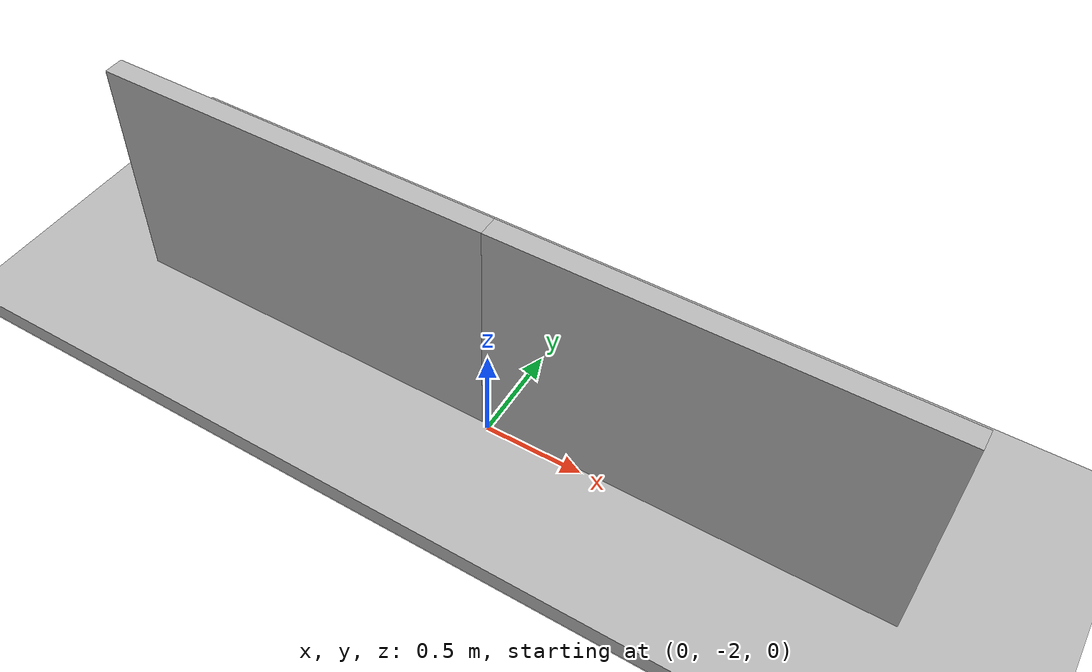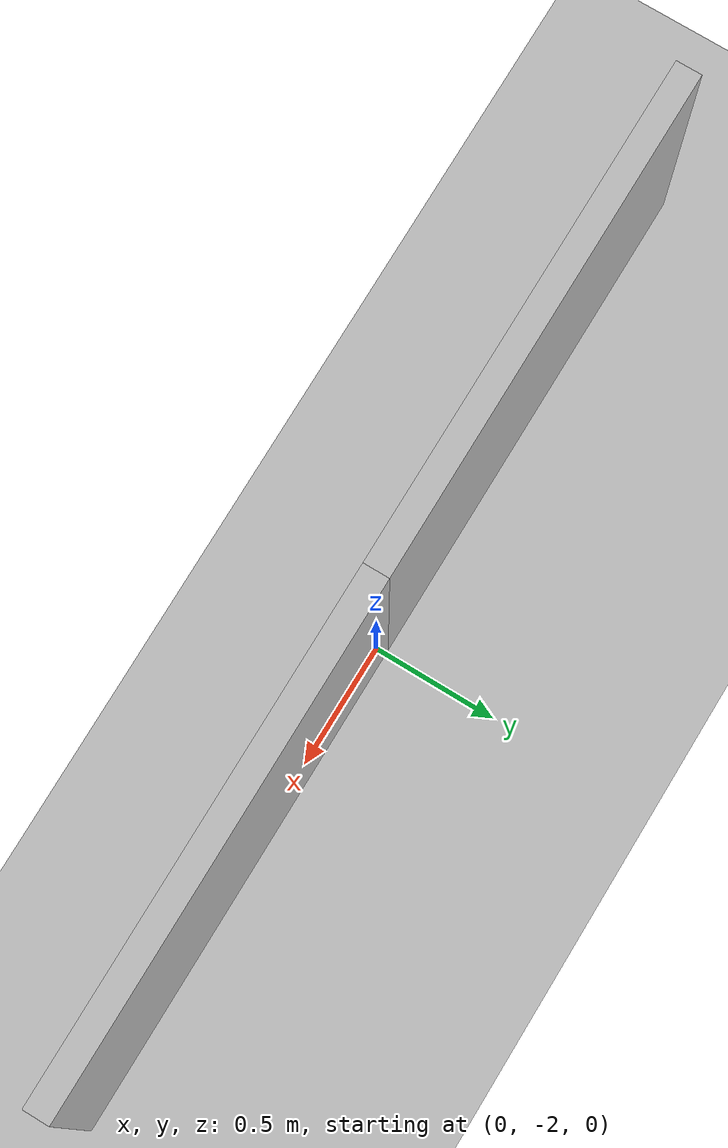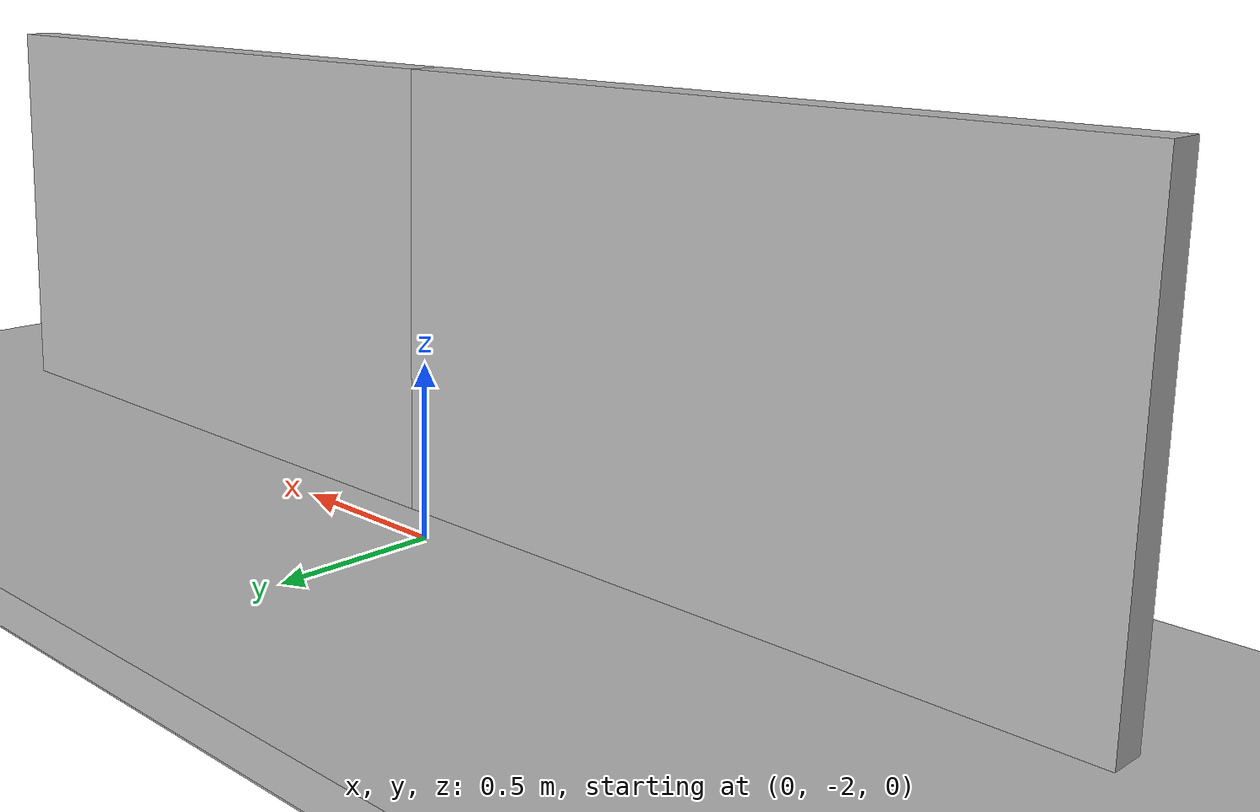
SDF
<sdf version='1.10'>
  <world name='empty'>
    <physics name='1ms' type='ignored'>
      <max_step_size>0.001</max_step_size>
      <real_time_factor>1</real_time_factor>
      <real_time_update_rate>1000</real_time_update_rate>
    </physics>
    <plugin name='gz::sim::systems::Physics' filename='gz-sim-physics-system'/>
    <plugin name='gz::sim::systems::UserCommands' filename='gz-sim-user-commands-system'/>
    <plugin name='gz::sim::systems::SceneBroadcaster' filename='gz-sim-scene-broadcaster-system'/>
    <plugin name='gz::sim::systems::Contact' filename='gz-sim-contact-system'/>
    <gravity>0 0 -9.8000000000000007</gravity>
    <magnetic_field>5.5644999999999998e-06 2.2875799999999999e-05 -4.2388400000000002e-05</magnetic_field>
    <atmosphere type='adiabatic'/>
    <scene>
      <ambient>0.400000006 0.400000006 0.400000006 1</ambient>
      <background>0.699999988 0.699999988 0.699999988 1</background>
      <shadows>true</shadows>
    </scene>
    <model name='ground_plane'>
      <static>true</static>
      <link name='link'>
        <collision name='collision'>
          <geometry>
            <plane>
              <normal>0 0 1</normal>
              <size>100 100</size>
            </plane>
          </geometry>
          <surface>
            <friction>
              <ode/>
            </friction>
            <bounce/>
            <contact/>
          </surface>
        </collision>
        <visual name='visual'>
          <geometry>
            <plane>
              <normal>0 0 1</normal>
              <size>100 100</size>
            </plane>
          </geometry>
          <material>
            <ambient>0.800000012 0.800000012 0.800000012 1</ambient>
            <diffuse>0.800000012 0.800000012 0.800000012 1</diffuse>
            <specular>0.800000012 0.800000012 0.800000012 1</specular>
          </material>
        </visual>
        <pose>0 0 0 0 0 0</pose>
        <inertial>
          <pose>0 0 0 0 0 0</pose>
          <mass>1</mass>
          <inertia>
            <ixx>1</ixx>
            <ixy>0</ixy>
            <ixz>0</ixz>
            <iyy>1</iyy>
            <iyz>0</iyz>
            <izz>1</izz>
          </inertia>
        </inertial>
        <enable_wind>false</enable_wind>
      </link>
      <pose>0 0 0 0 0 0</pose>
      <self_collide>false</self_collide>
    </model>
    <model name='Road'>
      <static>true</static>
      <link name='link'>
        <visual name='visual'>
          <geometry>
            <mesh>
              <uri>file://road/meshes/Road.obj</uri>
            </mesh>
          </geometry>
        </visual>
        <collision name='collision'>
          <geometry>
            <mesh>
              <uri>file://road/meshes/Road.obj</uri>
            </mesh>
          </geometry>
        </collision>
        <pose>0 0 0 0 0 0</pose>
        <inertial>
          <pose>0 0 0 0 0 0</pose>
          <mass>1</mass>
          <inertia>
            <ixx>1</ixx>
            <ixy>0</ixy>
            <ixz>0</ixz>
            <iyy>1</iyy>
            <iyz>0</iyz>
            <izz>1</izz>
          </inertia>
        </inertial>
        <enable_wind>false</enable_wind>
      </link>
      <pose>0 0 0 1.5707963274657843 0 0</pose>
      <static>false</static>
      <self_collide>false</self_collide>
    </model>
    <model name='BrickWall'>
      <static>true</static>
      <link name='link'>
        <visual name='visual'>
          <geometry>
            <mesh>
              <uri>file://new_brick_wall/meshes/BrickWall.obj</uri>
            </mesh>
          </geometry>
        </visual>
        <collision name='collision'>
          <geometry>
            <mesh>
              <uri>file://new_brick_wall/meshes/BrickWall.obj</uri>
            </mesh>
          </geometry>
        </collision>
        <pose>0 0 0 0 0 0</pose>
        <inertial>
          <pose>0 0 0 0 0 0</pose>
          <mass>1</mass>
          <inertia>
            <ixx>1</ixx>
            <ixy>0</ixy>
            <ixz>0</ixz>
            <iyy>1</iyy>
            <iyz>0</iyz>
            <izz>1</izz>
          </inertia>
        </inertial>
        <enable_wind>false</enable_wind>
      </link>
      <pose>1 -2.0 0.1 1.5707967454598686 0 1.5707967454598686</pose>
      <static>false</static>
      <self_collide>false</self_collide>
    </model>
    <model name='BrickWall_0'>
      <static>true</static>
      <link name='link'>
        <visual name='visual'>
          <geometry>
            <mesh>
              <uri>file://new_brick_wall/meshes/BrickWall.obj</uri>
            </mesh>
          </geometry>
        </visual>
        <collision name='collision'>
          <geometry>
            <mesh>
                <uri>file://new_brick_wall/meshes/BrickWall.obj</uri>
            </mesh>
          </geometry>
        </collision>
        <pose>0 0 0 0 0 0</pose>
        <inertial>
          <pose>0 0 0 0 0 0</pose>
          <mass>1</mass>
          <inertia>
            <ixx>1</ixx>
            <ixy>0</ixy>
            <ixz>0</ixz>
            <iyy>1</iyy>
            <iyz>0</iyz>
            <izz>1</izz>
          </inertia>
        </inertial>
        <enable_wind>false</enable_wind>
      </link>
      <pose>-1 -2 0.1 1.5707965357489582 0 1.5707967454598686</pose>
      <static>false</static>
      <self_collide>false</self_collide>
    </model>
    <light name='sun' type='directional'>
      <pose>0 0 10 0 0 0</pose>
      <cast_shadows>true</cast_shadows>
      <intensity>1</intensity>
      <direction>-0.5 0.10000000000000001 -0.90000000000000002</direction>
      <diffuse>0.800000012 0.800000012 0.800000012 1</diffuse>
      <specular>0.200000003 0.200000003 0.200000003 1</specular>
      <attenuation>
        <range>1000</range>
        <linear>0.01</linear>
        <constant>0.90000000000000002</constant>
        <quadratic>0.001</quadratic>
      </attenuation>
      <spot>
        <inner_angle>0</inner_angle>
        <outer_angle>0</outer_angle>
        <falloff>0</falloff>
      </spot>
    </light>

    <plugin
      filename="gz-sim-sensors-system"
      name="gz::sim::systems::Sensors">
      <render_engine>ogre2</render_engine>
    </plugin>

  </world>
</sdf>
